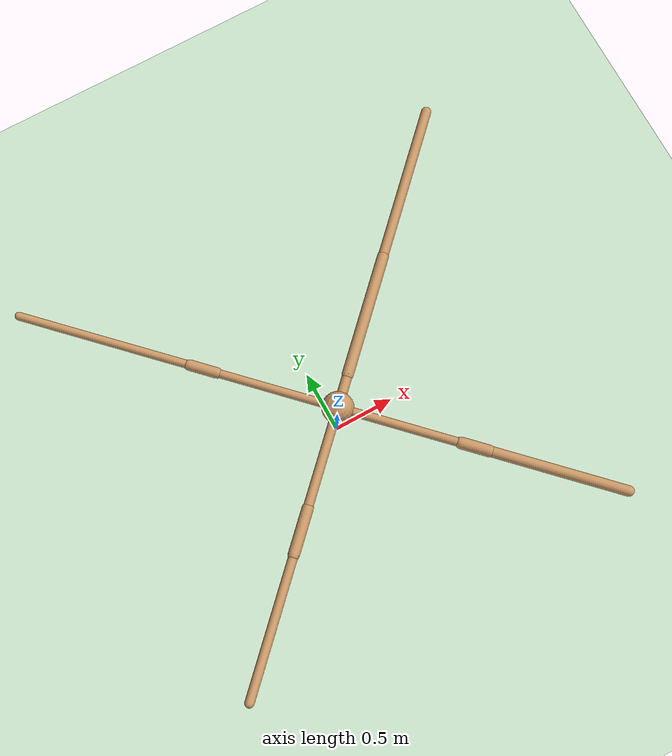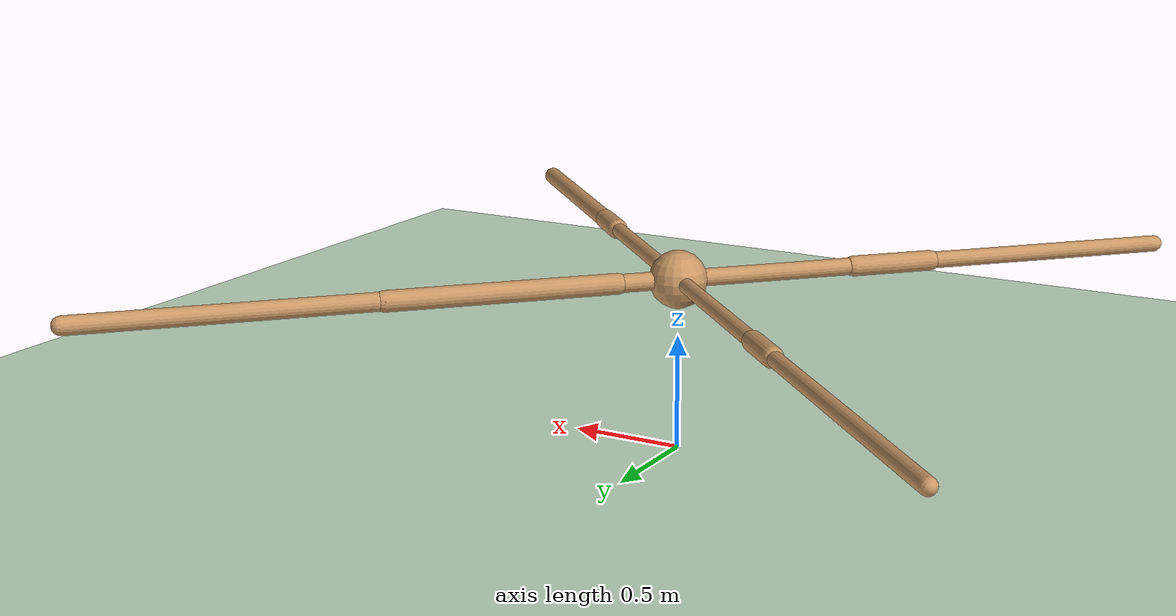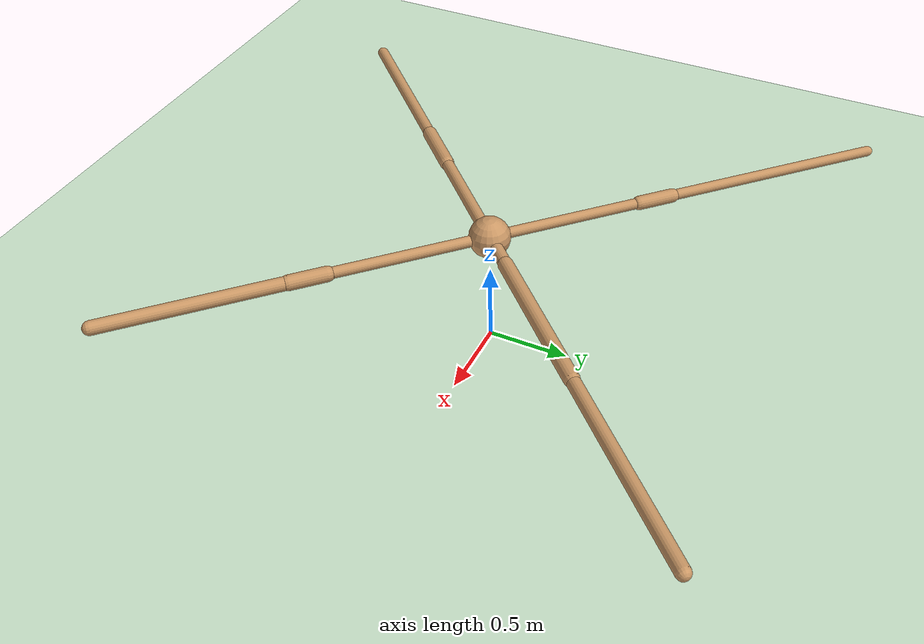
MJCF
<mujoco model="ant">
  <compiler angle="degree" coordinate="local" inertiafromgeom="true" />
  <option integrator="RK4" timestep="0.01" />
  <custom>
    <numeric data="0.0 0.0 0.55 1.0 0.0 0.0 0.0 0.0 1.0 0.0 -1.0 0.0 -1.0 0.0 1.0" name="init_qpos" />
  </custom>
  <default>
    <joint armature="1" damping="1" limited="true" />
    <geom conaffinity="0" condim="3" density="5.0" friction="1 0.5 0.5" margin="0.01" rgba="0.8 0.6 0.4 1" />
  </default>
  <asset>
    <texture builtin="gradient" height="100" rgb1="1 1 1" rgb2="0 0 0" type="skybox" width="100" />
    <texture builtin="flat" height="1278" mark="cross" markrgb="1 1 1" name="texgeom" random="0.01" rgb1="0.8 0.6 0.4" rgb2="0.8 0.6 0.4" type="cube" width="127" />
    <texture builtin="checker" height="100" name="texplane" rgb1="0 0 0" rgb2="0.8 0.8 0.8" type="2d" width="100" />
    <material name="MatPlane" reflectance="0.5" shininess="1" specular="1" texrepeat="60 60" texture="texplane" />
    <material name="geom" texture="texgeom" texuniform="true" />
  </asset>
  <worldbody>
    <light cutoff="100" diffuse="1 1 1" dir="-0 0 -1.3" directional="true" exponent="1" pos="0 0 1.3" specular=".1 .1 .1" />
    <geom conaffinity="1" condim="3" material="MatPlane" name="floor" pos="0 0 0" rgba="0.8 0.9 0.8 1" size="40 40 40" type="plane" />
    <body name="torso" pos="0 0 0.75">
      <camera name="track" mode="trackcom" pos="0 -11 5" xyaxes="1 0 0 0 0.5 1" />
      <geom name="torso_geom" pos="0 0 0" size="0.12459105253219604" type="sphere" />
      <joint armature="0" damping="0" limited="false" margin="0.01" name="root" pos="0 0 0" type="free" />
      <body name="front_left_leg" pos="0 0 0">
        <geom fromto="0 0 0 0.18668769299983978 0.18668769299983978 0" name="aux_1_geom" size="0.03958919271826744" type="capsule" />
        <body name="aux_1" pos="0.18668769299983978 0.18668769299983978 0">
          <joint axis="0 0 1" name="hip_1" pos="0.0 0.0 0.0" range="-30 30" type="hinge" />
          <geom fromto="0 0 0 0.6947767734527588 0.6947767734527588 0" name="left_leg_geom" size="0.045237235724925995" type="capsule" />
          <body name="left_leg_geom_aux" pos="0.6947767734527588 0.6947767734527588 0">
            <joint axis="-1 1 0" name="ankle_1" pos="0.0 0.0 0.0" range="30 70" type="hinge" />
            <geom fromto="0 0 0 0.8865325450897217 0.8865325450897217 0" name="left_ankle_geom" size="0.04018724709749222" type="capsule" />
          </body>
        </body>
      </body>
      <body name="front_right_leg" pos="0 0 0">
        <geom fromto="0 0 0 -0.6723846197128296 0.6723846197128296 0" name="aux_2_geom" size="0.03282172977924347" type="capsule" />
        <body name="aux_2" pos="-0.6723846197128296 0.6723846197128296 0">
          <joint axis="0 0 1" name="hip_2" pos="0.0 0.0 0.0" range="-30 30" type="hinge" />
          <geom fromto="0 0 0 -0.15410761535167694 0.15410761535167694 0" name="right_leg_geom" size="0.04264984279870987" type="capsule" />
          <body name="right_leg_geom_aux" pos="-0.15410761535167694 0.15410761535167694 0">
            <joint axis="1 1 0" name="ankle_2" pos="0.0 0.0 0.0" range="-70 -30" type="hinge" />
            <geom fromto="0 0 0 -0.9657878875732422 0.9657878875732422 0" name="right_ankle_geom" size="0.03211399167776108" type="capsule" />
          </body>
        </body>
      </body>
      <body name="back_leg" pos="0 0 0">
        <geom fromto="0 0 0 -0.5630652904510498 -0.5630652904510498 0" name="aux_3_geom" size="0.03757569193840027" type="capsule" />
        <body name="aux_3" pos="-0.5630652904510498 -0.5630652904510498 0">
          <joint axis="0 0 1" name="hip_3" pos="0.0 0.0 0.0" range="-30 30" type="hinge" />
          <geom fromto="0 0 0 -0.2541363835334778 -0.2541363835334778 0" name="back_leg_geom" size="0.04468567669391632" type="capsule" />
          <body name="back_leg_geom_aux" pos="-0.2541363835334778 -0.2541363835334778 0">
            <joint axis="-1 1 0" name="ankle_3" pos="0.0 0.0 0.0" range="-70 -30" type="hinge" />
            <geom fromto="0 0 0 -0.7825555205345154 -0.7825555205345154 0" name="third_ankle_geom" size="0.03651486337184906" type="capsule" />
          </body>
        </body>
      </body>
      <body name="right_back_leg" pos="0 0 0">
        <geom fromto="0 0 0 0.6786835193634033 -0.6786835193634033 0" name="aux_4_geom" size="0.03433507680892944" type="capsule" />
        <body name="aux_4" pos="0.6786835193634033 -0.6786835193634033 0">
          <joint axis="0 0 1" name="hip_4" pos="0.0 0.0 0.0" range="-30 30" type="hinge" />
          <geom fromto="0 0 0 0.15816998481750488 -0.15816998481750488 0" name="rightback_leg_geom" size="0.04621969908475876" type="capsule" />
          <body name="rightback_leg_geom_aux" pos="0.15816998481750488 -0.15816998481750488 0">
            <joint axis="1 1 0" name="ankle_4" pos="0.0 0.0 0.0" range="30 70" type="hinge" />
            <geom fromto="0 0 0 0.7523154020309448 -0.7523154020309448 0" name="fourth_ankle_geom" size="0.04181195795536041" type="capsule" />
          </body>
        </body>
      </body>
    </body>
  </worldbody>
  <actuator>
    <motor ctrllimited="true" ctrlrange="-1.0 1.0" joint="hip_4" gear="150" />
    <motor ctrllimited="true" ctrlrange="-1.0 1.0" joint="ankle_4" gear="150" />
    <motor ctrllimited="true" ctrlrange="-1.0 1.0" joint="hip_1" gear="150" />
    <motor ctrllimited="true" ctrlrange="-1.0 1.0" joint="ankle_1" gear="150" />
    <motor ctrllimited="true" ctrlrange="-1.0 1.0" joint="hip_2" gear="150" />
    <motor ctrllimited="true" ctrlrange="-1.0 1.0" joint="ankle_2" gear="150" />
    <motor ctrllimited="true" ctrlrange="-1.0 1.0" joint="hip_3" gear="150" />
    <motor ctrllimited="true" ctrlrange="-1.0 1.0" joint="ankle_3" gear="150" />
  </actuator>
</mujoco>
